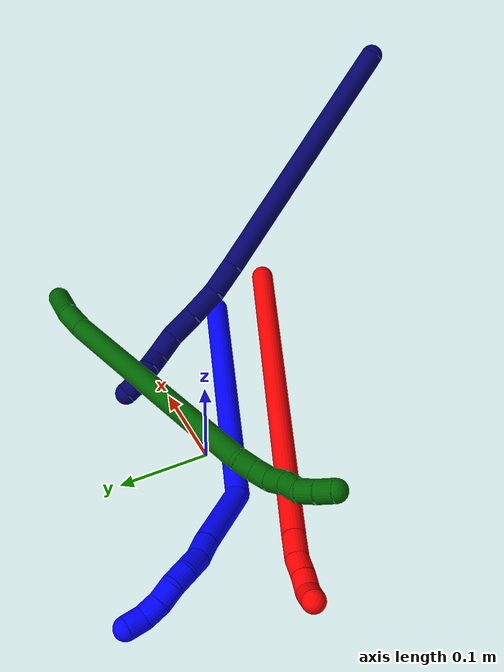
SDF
<sdf version="1.7">
 <world name="default">
  <model name="1">
   <static>0</static>
   <link name="1">
    <collision name="collision-cylinder-e_1_1_4">
     <pose>-0.081287 0.023662 0.118395 -0.197259 -0.592554 0.060393</pose>
     <geometry><cylinder><radius>0.0125</radius><length>0.2911</length></cylinder></geometry>
     <surface>
      <friction><ode><mu>1.16</mu><mu2>1.16</mu2><slip1>0</slip1><slip2>0</slip2></ode></friction>
      <contact><ode><kp>1e+06</kp><kd>1</kd><max_vel>0</max_vel><min_depth>0.001</min_depth></ode></contact>
     </surface>
    </collision>
    <visual name="visual-cylinder-e_1_1_4">
     <pose>-0.081287 0.023662 0.118395 -0.197259 -0.592554 0.060393</pose>
     <geometry><cylinder><radius>0.0125</radius><length>0.2911</length></cylinder></geometry>
     <material><ambient>0 0 1 1</ambient></material>
    </visual>
    <collision name="collision-cylinder-e_2_4_5">
     <pose>-0.166348 0.049323 0.276377 -0.050457 -0.094944 0.002398</pose>
     <geometry><cylinder><radius>0.0125</radius><length>0.079635</length></cylinder></geometry>
     <surface>
      <friction><ode><mu>1.16</mu><mu2>1.16</mu2><slip1>0</slip1><slip2>0</slip2></ode></friction>
      <contact><ode><kp>1e+06</kp><kd>1</kd><max_vel>0</max_vel><min_depth>0.001</min_depth></ode></contact>
     </surface>
    </collision>
    <visual name="visual-cylinder-e_2_4_5">
     <pose>-0.166348 0.049323 0.276377 -0.050457 -0.094944 0.002398</pose>
     <geometry><cylinder><radius>0.0125</radius><length>0.079635</length></cylinder></geometry>
     <material><ambient>0 0 1 1</ambient></material>
    </visual>
    <collision name="collision-cylinder-e_3_5_6">
     <pose>-0.172242 0.052486 0.327686 -0.098972 -0.177994 0.008839</pose>
     <geometry><cylinder><radius>0.0125</radius><length>0.023937</length></cylinder></geometry>
     <surface>
      <friction><ode><mu>1.16</mu><mu2>1.16</mu2><slip1>0</slip1><slip2>0</slip2></ode></friction>
      <contact><ode><kp>1e+06</kp><kd>1</kd><max_vel>0</max_vel><min_depth>0.001</min_depth></ode></contact>
     </surface>
    </collision>
    <visual name="visual-cylinder-e_3_5_6">
     <pose>-0.172242 0.052486 0.327686 -0.098972 -0.177994 0.008839</pose>
     <geometry><cylinder><radius>0.0125</radius><length>0.023937</length></cylinder></geometry>
     <material><ambient>0 0 1 1</ambient></material>
    </visual>
    <collision name="collision-cylinder-e_4_6_7">
     <pose>-0.174438 0.052934 0.351814 0.057678 -0.006146 -0.000177</pose>
     <geometry><cylinder><radius>0.0125</radius><length>0.024854</length></cylinder></geometry>
     <surface>
      <friction><ode><mu>1.16</mu><mu2>1.16</mu2><slip1>0</slip1><slip2>0</slip2></ode></friction>
      <contact><ode><kp>1e+06</kp><kd>1</kd><max_vel>0</max_vel><min_depth>0.001</min_depth></ode></contact>
     </surface>
    </collision>
    <visual name="visual-cylinder-e_4_6_7">
     <pose>-0.174438 0.052934 0.351814 0.057678 -0.006146 -0.000177</pose>
     <geometry><cylinder><radius>0.0125</radius><length>0.024854</length></cylinder></geometry>
     <material><ambient>0 0 1 1</ambient></material>
    </visual>
    <collision name="collision-cylinder-e_5_7_8">
     <pose>-0.173338 0.054342 0.37413 -0.211207 0.115551 -0.012262</pose>
     <geometry><cylinder><radius>0.0125</radius><length>0.020406</length></cylinder></geometry>
     <surface>
      <friction><ode><mu>1.16</mu><mu2>1.16</mu2><slip1>0</slip1><slip2>0</slip2></ode></friction>
      <contact><ode><kp>1e+06</kp><kd>1</kd><max_vel>0</max_vel><min_depth>0.001</min_depth></ode></contact>
     </surface>
    </collision>
    <visual name="visual-cylinder-e_5_7_8">
     <pose>-0.173338 0.054342 0.37413 -0.211207 0.115551 -0.012262</pose>
     <geometry><cylinder><radius>0.0125</radius><length>0.020406</length></cylinder></geometry>
     <material><ambient>0 0 1 1</ambient></material>
    </visual>
    <collision name="collision-cylinder-e_6_8_9">
     <pose>-0.170708 0.061879 0.392339 -0.577906 0.145696 -0.043382</pose>
     <geometry><cylinder><radius>0.0125</radius><length>0.020028</length></cylinder></geometry>
     <surface>
      <friction><ode><mu>1.16</mu><mu2>1.16</mu2><slip1>0</slip1><slip2>0</slip2></ode></friction>
      <contact><ode><kp>1e+06</kp><kd>1</kd><max_vel>0</max_vel><min_depth>0.001</min_depth></ode></contact>
     </surface>
    </collision>
    <visual name="visual-cylinder-e_6_8_9">
     <pose>-0.170708 0.061879 0.392339 -0.577906 0.145696 -0.043382</pose>
     <geometry><cylinder><radius>0.0125</radius><length>0.020028</length></cylinder></geometry>
     <material><ambient>0 0 1 1</ambient></material>
    </visual>
    <collision name="collision-cylinder-e_7_9_10">
     <pose>-0.165894 0.072308 0.408626 -0.560675 0.342161 -0.099406</pose>
     <geometry><cylinder><radius>0.0125</radius><length>0.020027</length></cylinder></geometry>
     <surface>
      <friction><ode><mu>1.16</mu><mu2>1.16</mu2><slip1>0</slip1><slip2>0</slip2></ode></friction>
      <contact><ode><kp>1e+06</kp><kd>1</kd><max_vel>0</max_vel><min_depth>0.001</min_depth></ode></contact>
     </surface>
    </collision>
    <visual name="visual-cylinder-e_7_9_10">
     <pose>-0.165894 0.072308 0.408626 -0.560675 0.342161 -0.099406</pose>
     <geometry><cylinder><radius>0.0125</radius><length>0.020027</length></cylinder></geometry>
     <material><ambient>0 0 1 1</ambient></material>
    </visual>
    <collision name="collision-cylinder-e_8_10_2">
     <pose>-0.158071 0.080128 0.425121 -0.318447 0.462318 -0.075556</pose>
     <geometry><cylinder><radius>0.0125</radius><length>0.020014</length></cylinder></geometry>
     <surface>
      <friction><ode><mu>1.16</mu><mu2>1.16</mu2><slip1>0</slip1><slip2>0</slip2></ode></friction>
      <contact><ode><kp>1e+06</kp><kd>1</kd><max_vel>0</max_vel><min_depth>0.001</min_depth></ode></contact>
     </surface>
    </collision>
    <visual name="visual-cylinder-e_8_10_2">
     <pose>-0.158071 0.080128 0.425121 -0.318447 0.462318 -0.075556</pose>
     <geometry><cylinder><radius>0.0125</radius><length>0.020014</length></cylinder></geometry>
     <material><ambient>0 0 1 1</ambient></material>
    </visual>
    <collision name="collision-sphere-2">
     <pose>-0.153608 0.082932 0.433627 0 -0 0</pose>
     <geometry><sphere><radius>0.0125</radius></sphere></geometry>
     <surface>
      <friction><ode><mu>1.16</mu><mu2>1.16</mu2><slip1>0</slip1><slip2>0</slip2></ode></friction>
      <contact><ode><kp>1e+06</kp><kd>1</kd><max_vel>0</max_vel><min_depth>0.001</min_depth></ode></contact>
     </surface>
    </collision>
    <visual name="visual-sphere-2">
     <pose>-0.153608 0.082932 0.433627 0 -0 0</pose>
     <geometry><sphere><radius>0.0125</radius></sphere></geometry>
     <material><ambient>0 0 1 1</ambient></material>
    </visual>
    <collision name="collision-sphere-10">
     <pose>-0.162534 0.077324 0.416615 0 -0 0</pose>
     <geometry><sphere><radius>0.0125</radius></sphere></geometry>
     <surface>
      <friction><ode><mu>1.16</mu><mu2>1.16</mu2><slip1>0</slip1><slip2>0</slip2></ode></friction>
      <contact><ode><kp>1e+06</kp><kd>1</kd><max_vel>0</max_vel><min_depth>0.001</min_depth></ode></contact>
     </surface>
    </collision>
    <visual name="visual-sphere-10">
     <pose>-0.162534 0.077324 0.416615 0 -0 0</pose>
     <geometry><sphere><radius>0.0125</radius></sphere></geometry>
     <material><ambient>0 0 1 1</ambient></material>
    </visual>
    <collision name="collision-sphere-9">
     <pose>-0.169254 0.067292 0.400638 0 -0 0</pose>
     <geometry><sphere><radius>0.0125</radius></sphere></geometry>
     <surface>
      <friction><ode><mu>1.16</mu><mu2>1.16</mu2><slip1>0</slip1><slip2>0</slip2></ode></friction>
      <contact><ode><kp>1e+06</kp><kd>1</kd><max_vel>0</max_vel><min_depth>0.001</min_depth></ode></contact>
     </surface>
    </collision>
    <visual name="visual-sphere-9">
     <pose>-0.169254 0.067292 0.400638 0 -0 0</pose>
     <geometry><sphere><radius>0.0125</radius></sphere></geometry>
     <material><ambient>0 0 1 1</ambient></material>
    </visual>
    <collision name="collision-sphere-4">
     <pose>-0.162574 0.047324 0.236789 0 -0 0</pose>
     <geometry><sphere><radius>0.0125</radius></sphere></geometry>
     <surface>
      <friction><ode><mu>1.16</mu><mu2>1.16</mu2><slip1>0</slip1><slip2>0</slip2></ode></friction>
      <contact><ode><kp>1e+06</kp><kd>1</kd><max_vel>0</max_vel><min_depth>0.001</min_depth></ode></contact>
     </surface>
    </collision>
    <visual name="visual-sphere-4">
     <pose>-0.162574 0.047324 0.236789 0 -0 0</pose>
     <geometry><sphere><radius>0.0125</radius></sphere></geometry>
     <material><ambient>0 0 1 1</ambient></material>
    </visual>
    <collision name="collision-sphere-1">
     <geometry><sphere><radius>0.0125</radius></sphere></geometry>
     <surface>
      <friction><ode><mu>1.16</mu><mu2>1.16</mu2><slip1>0</slip1><slip2>0</slip2></ode></friction>
      <contact><ode><kp>1e+06</kp><kd>1</kd><max_vel>0</max_vel><min_depth>0.001</min_depth></ode></contact>
     </surface>
    </collision>
    <visual name="visual-sphere-1">
     <geometry><sphere><radius>0.0125</radius></sphere></geometry>
     <material><ambient>0 0 1 1</ambient></material>
    </visual>
    <collision name="collision-sphere-8">
     <pose>-0.172161 0.056467 0.38404 0 -0 0</pose>
     <geometry><sphere><radius>0.0125</radius></sphere></geometry>
     <surface>
      <friction><ode><mu>1.16</mu><mu2>1.16</mu2><slip1>0</slip1><slip2>0</slip2></ode></friction>
      <contact><ode><kp>1e+06</kp><kd>1</kd><max_vel>0</max_vel><min_depth>0.001</min_depth></ode></contact>
     </surface>
    </collision>
    <visual name="visual-sphere-8">
     <pose>-0.172161 0.056467 0.38404 0 -0 0</pose>
     <geometry><sphere><radius>0.0125</radius></sphere></geometry>
     <material><ambient>0 0 1 1</ambient></material>
    </visual>
    <collision name="collision-sphere-5">
     <pose>-0.170123 0.051322 0.315965 0 -0 0</pose>
     <geometry><sphere><radius>0.0125</radius></sphere></geometry>
     <surface>
      <friction><ode><mu>1.16</mu><mu2>1.16</mu2><slip1>0</slip1><slip2>0</slip2></ode></friction>
      <contact><ode><kp>1e+06</kp><kd>1</kd><max_vel>0</max_vel><min_depth>0.001</min_depth></ode></contact>
     </surface>
    </collision>
    <visual name="visual-sphere-5">
     <pose>-0.170123 0.051322 0.315965 0 -0 0</pose>
     <geometry><sphere><radius>0.0125</radius></sphere></geometry>
     <material><ambient>0 0 1 1</ambient></material>
    </visual>
    <collision name="collision-sphere-6">
     <pose>-0.174361 0.05365 0.339408 0 -0 0</pose>
     <geometry><sphere><radius>0.0125</radius></sphere></geometry>
     <surface>
      <friction><ode><mu>1.16</mu><mu2>1.16</mu2><slip1>0</slip1><slip2>0</slip2></ode></friction>
      <contact><ode><kp>1e+06</kp><kd>1</kd><max_vel>0</max_vel><min_depth>0.001</min_depth></ode></contact>
     </surface>
    </collision>
    <visual name="visual-sphere-6">
     <pose>-0.174361 0.05365 0.339408 0 -0 0</pose>
     <geometry><sphere><radius>0.0125</radius></sphere></geometry>
     <material><ambient>0 0 1 1</ambient></material>
    </visual>
    <collision name="collision-sphere-7">
     <pose>-0.174514 0.052218 0.36422 0 -0 0</pose>
     <geometry><sphere><radius>0.0125</radius></sphere></geometry>
     <surface>
      <friction><ode><mu>1.16</mu><mu2>1.16</mu2><slip1>0</slip1><slip2>0</slip2></ode></friction>
      <contact><ode><kp>1e+06</kp><kd>1</kd><max_vel>0</max_vel><min_depth>0.001</min_depth></ode></contact>
     </surface>
    </collision>
    <visual name="visual-sphere-7">
     <pose>-0.174514 0.052218 0.36422 0 -0 0</pose>
     <geometry><sphere><radius>0.0125</radius></sphere></geometry>
     <material><ambient>0 0 1 1</ambient></material>
    </visual>
    <inertial>
     <pose>-0.11762 0.037576 0.210491 0 -0 0</pose>
     <mass>0.5</mass>
     <inertia>
      <ixx>0.001858</ixx>
      <ixy>0</ixy>
      <ixz>0</ixz>
      <iyy>0.002201</iyy>
      <iyz>0</iyz>
      <izz>0.000851</izz>
     </inertia>
    </inertial>
   </link>
   <pose>0.197904 -0.106471 0.012396 -1.35878 -0.027525 0.609387</pose>
  </model>
  <model name="2">
   <static>0</static>
   <link name="2">
    <collision name="collision-cylinder-e_1_1_4">
     <pose>-0.184795 0.07664 0.041832 -1.07117 -1.1294 0.719219</pose>
     <geometry><cylinder><radius>0.0125</radius><length>0.408769</length></cylinder></geometry>
     <surface>
      <friction><ode><mu>1.16</mu><mu2>1.16</mu2><slip1>0</slip1><slip2>0</slip2></ode></friction>
      <contact><ode><kp>1e+06</kp><kd>1</kd><max_vel>0</max_vel><min_depth>0.001</min_depth></ode></contact>
     </surface>
    </collision>
    <visual name="visual-cylinder-e_1_1_4">
     <pose>-0.184795 0.07664 0.041832 -1.07117 -1.1294 0.719219</pose>
     <geometry><cylinder><radius>0.0125</radius><length>0.408769</length></cylinder></geometry>
     <material><ambient>1 0 0 1</ambient></material>
    </visual>
    <collision name="collision-cylinder-e_2_4_5">
     <pose>-0.382358 0.158346 0.087035 -0.98356 -1.12602 0.652054</pose>
     <geometry><cylinder><radius>0.0125</radius><length>0.028286</length></cylinder></geometry>
     <surface>
      <friction><ode><mu>1.16</mu><mu2>1.16</mu2><slip1>0</slip1><slip2>0</slip2></ode></friction>
      <contact><ode><kp>1e+06</kp><kd>1</kd><max_vel>0</max_vel><min_depth>0.001</min_depth></ode></contact>
     </surface>
    </collision>
    <visual name="visual-cylinder-e_2_4_5">
     <pose>-0.382358 0.158346 0.087035 -0.98356 -1.12602 0.652054</pose>
     <geometry><cylinder><radius>0.0125</radius><length>0.028286</length></cylinder></geometry>
     <material><ambient>1 0 0 1</ambient></material>
    </visual>
    <collision name="collision-cylinder-e_3_5_6">
     <pose>-0.403976 0.168832 0.093913 -0.996542 -0.940668 0.539692</pose>
     <geometry><cylinder><radius>0.0125</radius><length>0.02191</length></cylinder></geometry>
     <surface>
      <friction><ode><mu>1.16</mu><mu2>1.16</mu2><slip1>0</slip1><slip2>0</slip2></ode></friction>
      <contact><ode><kp>1e+06</kp><kd>1</kd><max_vel>0</max_vel><min_depth>0.001</min_depth></ode></contact>
     </surface>
    </collision>
    <visual name="visual-cylinder-e_3_5_6">
     <pose>-0.403976 0.168832 0.093913 -0.996542 -0.940668 0.539692</pose>
     <geometry><cylinder><radius>0.0125</radius><length>0.02191</length></cylinder></geometry>
     <material><ambient>1 0 0 1</ambient></material>
    </visual>
    <collision name="collision-cylinder-e_4_6_7">
     <pose>-0.421755 0.178801 0.100513 -0.973558 -1.01849 0.574684</pose>
     <geometry><cylinder><radius>0.0125</radius><length>0.020974</length></cylinder></geometry>
     <surface>
      <friction><ode><mu>1.16</mu><mu2>1.16</mu2><slip1>0</slip1><slip2>0</slip2></ode></friction>
      <contact><ode><kp>1e+06</kp><kd>1</kd><max_vel>0</max_vel><min_depth>0.001</min_depth></ode></contact>
     </surface>
    </collision>
    <visual name="visual-cylinder-e_4_6_7">
     <pose>-0.421755 0.178801 0.100513 -0.973558 -1.01849 0.574684</pose>
     <geometry><cylinder><radius>0.0125</radius><length>0.020974</length></cylinder></geometry>
     <material><ambient>1 0 0 1</ambient></material>
    </visual>
    <collision name="collision-cylinder-e_5_7_2">
     <pose>-0.436879 0.191234 0.103897 -1.53405 -0.665856 0.643479</pose>
     <geometry><cylinder><radius>0.0125</radius><length>0.020062</length></cylinder></geometry>
     <surface>
      <friction><ode><mu>1.16</mu><mu2>1.16</mu2><slip1>0</slip1><slip2>0</slip2></ode></friction>
      <contact><ode><kp>1e+06</kp><kd>1</kd><max_vel>0</max_vel><min_depth>0.001</min_depth></ode></contact>
     </surface>
    </collision>
    <visual name="visual-cylinder-e_5_7_2">
     <pose>-0.436879 0.191234 0.103897 -1.53405 -0.665856 0.643479</pose>
     <geometry><cylinder><radius>0.0125</radius><length>0.020062</length></cylinder></geometry>
     <material><ambient>1 0 0 1</ambient></material>
    </visual>
    <collision name="collision-sphere-2">
     <pose>-0.443075 0.199116 0.104187 0 -0 0</pose>
     <geometry><sphere><radius>0.0125</radius></sphere></geometry>
     <surface>
      <friction><ode><mu>1.16</mu><mu2>1.16</mu2><slip1>0</slip1><slip2>0</slip2></ode></friction>
      <contact><ode><kp>1e+06</kp><kd>1</kd><max_vel>0</max_vel><min_depth>0.001</min_depth></ode></contact>
     </surface>
    </collision>
    <visual name="visual-sphere-2">
     <pose>-0.443075 0.199116 0.104187 0 -0 0</pose>
     <geometry><sphere><radius>0.0125</radius></sphere></geometry>
     <material><ambient>1 0 0 1</ambient></material>
    </visual>
    <collision name="collision-sphere-7">
     <pose>-0.430682 0.183351 0.103607 0 -0 0</pose>
     <geometry><sphere><radius>0.0125</radius></sphere></geometry>
     <surface>
      <friction><ode><mu>1.16</mu><mu2>1.16</mu2><slip1>0</slip1><slip2>0</slip2></ode></friction>
      <contact><ode><kp>1e+06</kp><kd>1</kd><max_vel>0</max_vel><min_depth>0.001</min_depth></ode></contact>
     </surface>
    </collision>
    <visual name="visual-sphere-7">
     <pose>-0.430682 0.183351 0.103607 0 -0 0</pose>
     <geometry><sphere><radius>0.0125</radius></sphere></geometry>
     <material><ambient>1 0 0 1</ambient></material>
    </visual>
    <collision name="collision-sphere-6">
     <pose>-0.412827 0.174252 0.097419 0 -0 0</pose>
     <geometry><sphere><radius>0.0125</radius></sphere></geometry>
     <surface>
      <friction><ode><mu>1.16</mu><mu2>1.16</mu2><slip1>0</slip1><slip2>0</slip2></ode></friction>
      <contact><ode><kp>1e+06</kp><kd>1</kd><max_vel>0</max_vel><min_depth>0.001</min_depth></ode></contact>
     </surface>
    </collision>
    <visual name="visual-sphere-6">
     <pose>-0.412827 0.174252 0.097419 0 -0 0</pose>
     <geometry><sphere><radius>0.0125</radius></sphere></geometry>
     <material><ambient>1 0 0 1</ambient></material>
    </visual>
    <collision name="collision-sphere-5">
     <pose>-0.395125 0.163412 0.090406 0 -0 0</pose>
     <geometry><sphere><radius>0.0125</radius></sphere></geometry>
     <surface>
      <friction><ode><mu>1.16</mu><mu2>1.16</mu2><slip1>0</slip1><slip2>0</slip2></ode></friction>
      <contact><ode><kp>1e+06</kp><kd>1</kd><max_vel>0</max_vel><min_depth>0.001</min_depth></ode></contact>
     </surface>
    </collision>
    <visual name="visual-sphere-5">
     <pose>-0.395125 0.163412 0.090406 0 -0 0</pose>
     <geometry><sphere><radius>0.0125</radius></sphere></geometry>
     <material><ambient>1 0 0 1</ambient></material>
    </visual>
    <collision name="collision-sphere-1">
     <geometry><sphere><radius>0.0125</radius></sphere></geometry>
     <surface>
      <friction><ode><mu>1.16</mu><mu2>1.16</mu2><slip1>0</slip1><slip2>0</slip2></ode></friction>
      <contact><ode><kp>1e+06</kp><kd>1</kd><max_vel>0</max_vel><min_depth>0.001</min_depth></ode></contact>
     </surface>
    </collision>
    <visual name="visual-sphere-1">
     <geometry><sphere><radius>0.0125</radius></sphere></geometry>
     <material><ambient>1 0 0 1</ambient></material>
    </visual>
    <collision name="collision-sphere-4">
     <pose>-0.369591 0.153281 0.083663 0 -0 0</pose>
     <geometry><sphere><radius>0.0125</radius></sphere></geometry>
     <surface>
      <friction><ode><mu>1.16</mu><mu2>1.16</mu2><slip1>0</slip1><slip2>0</slip2></ode></friction>
      <contact><ode><kp>1e+06</kp><kd>1</kd><max_vel>0</max_vel><min_depth>0.001</min_depth></ode></contact>
     </surface>
    </collision>
    <visual name="visual-sphere-4">
     <pose>-0.369591 0.153281 0.083663 0 -0 0</pose>
     <geometry><sphere><radius>0.0125</radius></sphere></geometry>
     <material><ambient>1 0 0 1</ambient></material>
    </visual>
    <inertial>
     <pose>-0.225631 0.094186 0.051623 0 -0 0</pose>
     <mass>0.5</mass>
     <inertia>
      <ixx>0.003412</ixx>
      <ixy>0</ixy>
      <ixz>0</ixz>
      <iyy>0.006672</iyy>
      <iyz>0</iyz>
      <izz>0.003031</izz>
     </inertia>
    </inertial>
   </link>
   <pose>0.2292 -0.183602 0.011498 2.18178 -0.202121 -0.783777</pose>
  </model>
  <model name="6">
   <static>0</static>
   <link name="6">
    <collision name="collision-cylinder-e_1_1_4">
     <pose>-0.007956 -0.006962 -0.022029 2.83551 -0.331653 -1.65232</pose>
     <geometry><cylinder><radius>0.0125</radius><length>0.048869</length></cylinder></geometry>
     <surface>
      <friction><ode><mu>1.16</mu><mu2>1.16</mu2><slip1>0</slip1><slip2>0</slip2></ode></friction>
      <contact><ode><kp>1e+06</kp><kd>1</kd><max_vel>0</max_vel><min_depth>0.001</min_depth></ode></contact>
     </surface>
    </collision>
    <visual name="visual-cylinder-e_1_1_4">
     <pose>-0.007956 -0.006962 -0.022029 2.83551 -0.331653 -1.65232</pose>
     <geometry><cylinder><radius>0.0125</radius><length>0.048869</length></cylinder></geometry>
     <material><ambient>0 0.392157 0.003922 1</ambient></material>
    </visual>
    <collision name="collision-cylinder-e_2_4_5">
     <pose>-0.025505 -0.020257 -0.053821 2.56609 -0.689411 -1.7628</pose>
     <geometry><cylinder><radius>0.0125</radius><length>0.030163</length></cylinder></geometry>
     <surface>
      <friction><ode><mu>1.16</mu><mu2>1.16</mu2><slip1>0</slip1><slip2>0</slip2></ode></friction>
      <contact><ode><kp>1e+06</kp><kd>1</kd><max_vel>0</max_vel><min_depth>0.001</min_depth></ode></contact>
     </surface>
    </collision>
    <visual name="visual-cylinder-e_2_4_5">
     <pose>-0.025505 -0.020257 -0.053821 2.56609 -0.689411 -1.7628</pose>
     <geometry><cylinder><radius>0.0125</radius><length>0.030163</length></cylinder></geometry>
     <material><ambient>0 0.392157 0.003922 1</ambient></material>
    </visual>
    <collision name="collision-cylinder-e_3_5_6">
     <pose>-0.12699 -0.069117 -0.173027 2.77097 -0.664054 -2.14562</pose>
     <geometry><cylinder><radius>0.0125</radius><length>0.298196</length></cylinder></geometry>
     <surface>
      <friction><ode><mu>1.16</mu><mu2>1.16</mu2><slip1>0</slip1><slip2>0</slip2></ode></friction>
      <contact><ode><kp>1e+06</kp><kd>1</kd><max_vel>0</max_vel><min_depth>0.001</min_depth></ode></contact>
     </surface>
    </collision>
    <visual name="visual-cylinder-e_3_5_6">
     <pose>-0.12699 -0.069117 -0.173027 2.77097 -0.664054 -2.14562</pose>
     <geometry><cylinder><radius>0.0125</radius><length>0.298196</length></cylinder></geometry>
     <material><ambient>0 0.392157 0.003922 1</ambient></material>
    </visual>
    <collision name="collision-cylinder-e_4_6_7">
     <pose>-0.227756 -0.115028 -0.286768 2.47472 -1.01844 -2.03109</pose>
     <geometry><cylinder><radius>0.0125</radius><length>0.020851</length></cylinder></geometry>
     <surface>
      <friction><ode><mu>1.16</mu><mu2>1.16</mu2><slip1>0</slip1><slip2>0</slip2></ode></friction>
      <contact><ode><kp>1e+06</kp><kd>1</kd><max_vel>0</max_vel><min_depth>0.001</min_depth></ode></contact>
     </surface>
    </collision>
    <visual name="visual-cylinder-e_4_6_7">
     <pose>-0.227756 -0.115028 -0.286768 2.47472 -1.01844 -2.03109</pose>
     <geometry><cylinder><radius>0.0125</radius><length>0.020851</length></cylinder></geometry>
     <material><ambient>0 0.392157 0.003922 1</ambient></material>
    </visual>
    <collision name="collision-cylinder-e_5_7_8">
     <pose>-0.244044 -0.120319 -0.298674 2.89588 -0.757128 -2.53958</pose>
     <geometry><cylinder><radius>0.0125</radius><length>0.021584</length></cylinder></geometry>
     <surface>
      <friction><ode><mu>1.16</mu><mu2>1.16</mu2><slip1>0</slip1><slip2>0</slip2></ode></friction>
      <contact><ode><kp>1e+06</kp><kd>1</kd><max_vel>0</max_vel><min_depth>0.001</min_depth></ode></contact>
     </surface>
    </collision>
    <visual name="visual-cylinder-e_5_7_8">
     <pose>-0.244044 -0.120319 -0.298674 2.89588 -0.757128 -2.53958</pose>
     <geometry><cylinder><radius>0.0125</radius><length>0.021584</length></cylinder></geometry>
     <material><ambient>0 0.392157 0.003922 1</ambient></material>
    </visual>
    <collision name="collision-cylinder-e_6_8_9">
     <pose>-0.258343 -0.121336 -0.313609 -3.02051 -0.750737 2.83634</pose>
     <geometry><cylinder><radius>0.0125</radius><length>0.020188</length></cylinder></geometry>
     <surface>
      <friction><ode><mu>1.16</mu><mu2>1.16</mu2><slip1>0</slip1><slip2>0</slip2></ode></friction>
      <contact><ode><kp>1e+06</kp><kd>1</kd><max_vel>0</max_vel><min_depth>0.001</min_depth></ode></contact>
     </surface>
    </collision>
    <visual name="visual-cylinder-e_6_8_9">
     <pose>-0.258343 -0.121336 -0.313609 -3.02051 -0.750737 2.83634</pose>
     <geometry><cylinder><radius>0.0125</radius><length>0.020188</length></cylinder></geometry>
     <material><ambient>0 0.392157 0.003922 1</ambient></material>
    </visual>
    <collision name="collision-cylinder-e_7_9_10">
     <pose>-0.270669 -0.121885 -0.329235 2.96975 -0.573501 -2.5732</pose>
     <geometry><cylinder><radius>0.0125</radius><length>0.020055</length></cylinder></geometry>
     <surface>
      <friction><ode><mu>1.16</mu><mu2>1.16</mu2><slip1>0</slip1><slip2>0</slip2></ode></friction>
      <contact><ode><kp>1e+06</kp><kd>1</kd><max_vel>0</max_vel><min_depth>0.001</min_depth></ode></contact>
     </surface>
    </collision>
    <visual name="visual-cylinder-e_7_9_10">
     <pose>-0.270669 -0.121885 -0.329235 2.96975 -0.573501 -2.5732</pose>
     <geometry><cylinder><radius>0.0125</radius><length>0.020055</length></cylinder></geometry>
     <material><ambient>0 0.392157 0.003922 1</ambient></material>
    </visual>
    <collision name="collision-cylinder-e_8_10_11">
     <pose>-0.28403 -0.12126 -0.343321 -2.79888 -0.910987 2.4624</pose>
     <geometry><cylinder><radius>0.0125</radius><length>0.020048</length></cylinder></geometry>
     <surface>
      <friction><ode><mu>1.16</mu><mu2>1.16</mu2><slip1>0</slip1><slip2>0</slip2></ode></friction>
      <contact><ode><kp>1e+06</kp><kd>1</kd><max_vel>0</max_vel><min_depth>0.001</min_depth></ode></contact>
     </surface>
    </collision>
    <visual name="visual-cylinder-e_8_10_11">
     <pose>-0.28403 -0.12126 -0.343321 -2.79888 -0.910987 2.4624</pose>
     <geometry><cylinder><radius>0.0125</radius><length>0.020048</length></cylinder></geometry>
     <material><ambient>0 0.392157 0.003922 1</ambient></material>
    </visual>
    <collision name="collision-cylinder-e_9_11_2">
     <pose>-0.299956 -0.116271 -0.354381 -2.63515 -0.925283 2.18435</pose>
     <geometry><cylinder><radius>0.0125</radius><length>0.020045</length></cylinder></geometry>
     <surface>
      <friction><ode><mu>1.16</mu><mu2>1.16</mu2><slip1>0</slip1><slip2>0</slip2></ode></friction>
      <contact><ode><kp>1e+06</kp><kd>1</kd><max_vel>0</max_vel><min_depth>0.001</min_depth></ode></contact>
     </surface>
    </collision>
    <visual name="visual-cylinder-e_9_11_2">
     <pose>-0.299956 -0.116271 -0.354381 -2.63515 -0.925283 2.18435</pose>
     <geometry><cylinder><radius>0.0125</radius><length>0.020045</length></cylinder></geometry>
     <material><ambient>0 0.392157 0.003922 1</ambient></material>
    </visual>
    <collision name="collision-sphere-2">
     <pose>-0.307961 -0.113346 -0.359653 0 -0 0</pose>
     <geometry><sphere><radius>0.0125</radius></sphere></geometry>
     <surface>
      <friction><ode><mu>1.16</mu><mu2>1.16</mu2><slip1>0</slip1><slip2>0</slip2></ode></friction>
      <contact><ode><kp>1e+06</kp><kd>1</kd><max_vel>0</max_vel><min_depth>0.001</min_depth></ode></contact>
     </surface>
    </collision>
    <visual name="visual-sphere-2">
     <pose>-0.307961 -0.113346 -0.359653 0 -0 0</pose>
     <geometry><sphere><radius>0.0125</radius></sphere></geometry>
     <material><ambient>0 0.392157 0.003922 1</ambient></material>
    </visual>
    <collision name="collision-sphere-11">
     <pose>-0.29195 -0.119195 -0.349108 0 -0 0</pose>
     <geometry><sphere><radius>0.0125</radius></sphere></geometry>
     <surface>
      <friction><ode><mu>1.16</mu><mu2>1.16</mu2><slip1>0</slip1><slip2>0</slip2></ode></friction>
      <contact><ode><kp>1e+06</kp><kd>1</kd><max_vel>0</max_vel><min_depth>0.001</min_depth></ode></contact>
     </surface>
    </collision>
    <visual name="visual-sphere-11">
     <pose>-0.29195 -0.119195 -0.349108 0 -0 0</pose>
     <geometry><sphere><radius>0.0125</radius></sphere></geometry>
     <material><ambient>0 0.392157 0.003922 1</ambient></material>
    </visual>
    <collision name="collision-sphere-10">
     <pose>-0.27611 -0.123325 -0.337534 0 -0 0</pose>
     <geometry><sphere><radius>0.0125</radius></sphere></geometry>
     <surface>
      <friction><ode><mu>1.16</mu><mu2>1.16</mu2><slip1>0</slip1><slip2>0</slip2></ode></friction>
      <contact><ode><kp>1e+06</kp><kd>1</kd><max_vel>0</max_vel><min_depth>0.001</min_depth></ode></contact>
     </surface>
    </collision>
    <visual name="visual-sphere-10">
     <pose>-0.27611 -0.123325 -0.337534 0 -0 0</pose>
     <geometry><sphere><radius>0.0125</radius></sphere></geometry>
     <material><ambient>0 0.392157 0.003922 1</ambient></material>
    </visual>
    <collision name="collision-sphere-9">
     <pose>-0.265229 -0.120444 -0.320936 0 -0 0</pose>
     <geometry><sphere><radius>0.0125</radius></sphere></geometry>
     <surface>
      <friction><ode><mu>1.16</mu><mu2>1.16</mu2><slip1>0</slip1><slip2>0</slip2></ode></friction>
      <contact><ode><kp>1e+06</kp><kd>1</kd><max_vel>0</max_vel><min_depth>0.001</min_depth></ode></contact>
     </surface>
    </collision>
    <visual name="visual-sphere-9">
     <pose>-0.265229 -0.120444 -0.320936 0 -0 0</pose>
     <geometry><sphere><radius>0.0125</radius></sphere></geometry>
     <material><ambient>0 0.392157 0.003922 1</ambient></material>
    </visual>
    <collision name="collision-sphere-4">
     <pose>-0.015912 -0.013923 -0.044058 0 -0 0</pose>
     <geometry><sphere><radius>0.0125</radius></sphere></geometry>
     <surface>
      <friction><ode><mu>1.16</mu><mu2>1.16</mu2><slip1>0</slip1><slip2>0</slip2></ode></friction>
      <contact><ode><kp>1e+06</kp><kd>1</kd><max_vel>0</max_vel><min_depth>0.001</min_depth></ode></contact>
     </surface>
    </collision>
    <visual name="visual-sphere-4">
     <pose>-0.015912 -0.013923 -0.044058 0 -0 0</pose>
     <geometry><sphere><radius>0.0125</radius></sphere></geometry>
     <material><ambient>0 0.392157 0.003922 1</ambient></material>
    </visual>
    <collision name="collision-sphere-1">
     <geometry><sphere><radius>0.0125</radius></sphere></geometry>
     <surface>
      <friction><ode><mu>1.16</mu><mu2>1.16</mu2><slip1>0</slip1><slip2>0</slip2></ode></friction>
      <contact><ode><kp>1e+06</kp><kd>1</kd><max_vel>0</max_vel><min_depth>0.001</min_depth></ode></contact>
     </surface>
    </collision>
    <visual name="visual-sphere-1">
     <geometry><sphere><radius>0.0125</radius></sphere></geometry>
     <material><ambient>0 0.392157 0.003922 1</ambient></material>
    </visual>
    <collision name="collision-sphere-8">
     <pose>-0.251457 -0.122227 -0.306283 0 -0 0</pose>
     <geometry><sphere><radius>0.0125</radius></sphere></geometry>
     <surface>
      <friction><ode><mu>1.16</mu><mu2>1.16</mu2><slip1>0</slip1><slip2>0</slip2></ode></friction>
      <contact><ode><kp>1e+06</kp><kd>1</kd><max_vel>0</max_vel><min_depth>0.001</min_depth></ode></contact>
     </surface>
    </collision>
    <visual name="visual-sphere-8">
     <pose>-0.251457 -0.122227 -0.306283 0 -0 0</pose>
     <geometry><sphere><radius>0.0125</radius></sphere></geometry>
     <material><ambient>0 0.392157 0.003922 1</ambient></material>
    </visual>
    <collision name="collision-sphere-5">
     <pose>-0.035098 -0.02659 -0.063584 0 -0 0</pose>
     <geometry><sphere><radius>0.0125</radius></sphere></geometry>
     <surface>
      <friction><ode><mu>1.16</mu><mu2>1.16</mu2><slip1>0</slip1><slip2>0</slip2></ode></friction>
      <contact><ode><kp>1e+06</kp><kd>1</kd><max_vel>0</max_vel><min_depth>0.001</min_depth></ode></contact>
     </surface>
    </collision>
    <visual name="visual-sphere-5">
     <pose>-0.035098 -0.02659 -0.063584 0 -0 0</pose>
     <geometry><sphere><radius>0.0125</radius></sphere></geometry>
     <material><ambient>0 0.392157 0.003922 1</ambient></material>
    </visual>
    <collision name="collision-sphere-6">
     <pose>-0.218881 -0.111644 -0.282469 0 -0 0</pose>
     <geometry><sphere><radius>0.0125</radius></sphere></geometry>
     <surface>
      <friction><ode><mu>1.16</mu><mu2>1.16</mu2><slip1>0</slip1><slip2>0</slip2></ode></friction>
      <contact><ode><kp>1e+06</kp><kd>1</kd><max_vel>0</max_vel><min_depth>0.001</min_depth></ode></contact>
     </surface>
    </collision>
    <visual name="visual-sphere-6">
     <pose>-0.218881 -0.111644 -0.282469 0 -0 0</pose>
     <geometry><sphere><radius>0.0125</radius></sphere></geometry>
     <material><ambient>0 0.392157 0.003922 1</ambient></material>
    </visual>
    <collision name="collision-sphere-7">
     <pose>-0.236632 -0.118411 -0.291066 0 -0 0</pose>
     <geometry><sphere><radius>0.0125</radius></sphere></geometry>
     <surface>
      <friction><ode><mu>1.16</mu><mu2>1.16</mu2><slip1>0</slip1><slip2>0</slip2></ode></friction>
      <contact><ode><kp>1e+06</kp><kd>1</kd><max_vel>0</max_vel><min_depth>0.001</min_depth></ode></contact>
     </surface>
    </collision>
    <visual name="visual-sphere-7">
     <pose>-0.236632 -0.118411 -0.291066 0 -0 0</pose>
     <geometry><sphere><radius>0.0125</radius></sphere></geometry>
     <material><ambient>0 0.392157 0.003922 1</ambient></material>
    </visual>
    <inertial>
     <pose>-0.142786 -0.072425 -0.187285 0 -0 0</pose>
     <mass>0.5</mass>
     <inertia>
      <ixx>-0.002463</ixx>
      <ixy>0</ixy>
      <ixz>0</ixz>
      <iyy>6.3e-05</iyy>
      <iyz>0</iyz>
      <izz>0.001992</izz>
     </inertia>
    </inertial>
   </link>
   <pose>0.284796 0.060248 0.02546 2.25658 -0.19129 1.05299</pose>
  </model>
  <model name="7">
   <static>0</static>
   <link name="7">
    <collision name="collision-cylinder-e_1_1_4">
     <pose>-0.020594 0.080681 -0.127728 -2.57821 -0.135479 0.460563</pose>
     <geometry><cylinder><radius>0.0125</radius><length>0.304946</length></cylinder></geometry>
     <surface>
      <friction><ode><mu>1.16</mu><mu2>1.16</mu2><slip1>0</slip1><slip2>0</slip2></ode></friction>
      <contact><ode><kp>1e+06</kp><kd>1</kd><max_vel>0</max_vel><min_depth>0.001</min_depth></ode></contact>
     </surface>
    </collision>
    <visual name="visual-cylinder-e_1_1_4">
     <pose>-0.020594 0.080681 -0.127728 -2.57821 -0.135479 0.460563</pose>
     <geometry><cylinder><radius>0.0125</radius><length>0.304946</length></cylinder></geometry>
     <material><ambient>0.003922 0 0.403922 1</ambient></material>
    </visual>
    <collision name="collision-cylinder-e_2_4_5">
     <pose>-0.042528 0.17124 -0.270757 -2.56837 -0.07349 0.248179</pose>
     <geometry><cylinder><radius>0.0125</radius><length>0.036523</length></cylinder></geometry>
     <surface>
      <friction><ode><mu>1.16</mu><mu2>1.16</mu2><slip1>0</slip1><slip2>0</slip2></ode></friction>
      <contact><ode><kp>1e+06</kp><kd>1</kd><max_vel>0</max_vel><min_depth>0.001</min_depth></ode></contact>
     </surface>
    </collision>
    <visual name="visual-cylinder-e_2_4_5">
     <pose>-0.042528 0.17124 -0.270757 -2.56837 -0.07349 0.248179</pose>
     <geometry><cylinder><radius>0.0125</radius><length>0.036523</length></cylinder></geometry>
     <material><ambient>0.003922 0 0.403922 1</ambient></material>
    </visual>
    <collision name="collision-cylinder-e_3_5_6">
     <pose>-0.044622 0.192937 -0.300058 -2.44043 -0.041086 0.112252</pose>
     <geometry><cylinder><radius>0.0125</radius><length>0.036676</length></cylinder></geometry>
     <surface>
      <friction><ode><mu>1.16</mu><mu2>1.16</mu2><slip1>0</slip1><slip2>0</slip2></ode></friction>
      <contact><ode><kp>1e+06</kp><kd>1</kd><max_vel>0</max_vel><min_depth>0.001</min_depth></ode></contact>
     </surface>
    </collision>
    <visual name="visual-cylinder-e_3_5_6">
     <pose>-0.044622 0.192937 -0.300058 -2.44043 -0.041086 0.112252</pose>
     <geometry><cylinder><radius>0.0125</radius><length>0.036676</length></cylinder></geometry>
     <material><ambient>0.003922 0 0.403922 1</ambient></material>
    </visual>
    <collision name="collision-cylinder-e_4_6_7">
     <pose>-0.045301 0.215775 -0.326441 -2.41447 0.004475 -0.011763</pose>
     <geometry><cylinder><radius>0.0125</radius><length>0.033151</length></cylinder></geometry>
     <surface>
      <friction><ode><mu>1.16</mu><mu2>1.16</mu2><slip1>0</slip1><slip2>0</slip2></ode></friction>
      <contact><ode><kp>1e+06</kp><kd>1</kd><max_vel>0</max_vel><min_depth>0.001</min_depth></ode></contact>
     </surface>
    </collision>
    <visual name="visual-cylinder-e_4_6_7">
     <pose>-0.045301 0.215775 -0.326441 -2.41447 0.004475 -0.011763</pose>
     <geometry><cylinder><radius>0.0125</radius><length>0.033151</length></cylinder></geometry>
     <material><ambient>0.003922 0 0.403922 1</ambient></material>
    </visual>
    <collision name="collision-cylinder-e_5_7_8">
     <pose>-0.047446 0.234922 -0.350405 -2.52956 -0.155569 0.483736</pose>
     <geometry><cylinder><radius>0.0125</radius><length>0.028642</length></cylinder></geometry>
     <surface>
      <friction><ode><mu>1.16</mu><mu2>1.16</mu2><slip1>0</slip1><slip2>0</slip2></ode></friction>
      <contact><ode><kp>1e+06</kp><kd>1</kd><max_vel>0</max_vel><min_depth>0.001</min_depth></ode></contact>
     </surface>
    </collision>
    <visual name="visual-cylinder-e_5_7_8">
     <pose>-0.047446 0.234922 -0.350405 -2.52956 -0.155569 0.483736</pose>
     <geometry><cylinder><radius>0.0125</radius><length>0.028642</length></cylinder></geometry>
     <material><ambient>0.003922 0 0.403922 1</ambient></material>
    </visual>
    <collision name="collision-cylinder-e_6_8_9">
     <pose>-0.055113 0.248894 -0.368043 -2.37423 -0.574415 1.26336</pose>
     <geometry><cylinder><radius>0.0125</radius><length>0.020054</length></cylinder></geometry>
     <surface>
      <friction><ode><mu>1.16</mu><mu2>1.16</mu2><slip1>0</slip1><slip2>0</slip2></ode></friction>
      <contact><ode><kp>1e+06</kp><kd>1</kd><max_vel>0</max_vel><min_depth>0.001</min_depth></ode></contact>
     </surface>
    </collision>
    <visual name="visual-cylinder-e_6_8_9">
     <pose>-0.055113 0.248894 -0.368043 -2.37423 -0.574415 1.26336</pose>
     <geometry><cylinder><radius>0.0125</radius><length>0.020054</length></cylinder></geometry>
     <material><ambient>0.003922 0 0.403922 1</ambient></material>
    </visual>
    <collision name="collision-cylinder-e_7_9_10">
     <pose>-0.065666 0.260226 -0.380726 -2.44977 -0.535546 1.30135</pose>
     <geometry><cylinder><radius>0.0125</radius><length>0.020004</length></cylinder></geometry>
     <surface>
      <friction><ode><mu>1.16</mu><mu2>1.16</mu2><slip1>0</slip1><slip2>0</slip2></ode></friction>
      <contact><ode><kp>1e+06</kp><kd>1</kd><max_vel>0</max_vel><min_depth>0.001</min_depth></ode></contact>
     </surface>
    </collision>
    <visual name="visual-cylinder-e_7_9_10">
     <pose>-0.065666 0.260226 -0.380726 -2.44977 -0.535546 1.30135</pose>
     <geometry><cylinder><radius>0.0125</radius><length>0.020004</length></cylinder></geometry>
     <material><ambient>0.003922 0 0.403922 1</ambient></material>
    </visual>
    <collision name="collision-cylinder-e_8_10_2">
     <pose>-0.071106 0.272837 -0.394363 -2.34831 -0.033586 0.080152</pose>
     <geometry><cylinder><radius>0.0125</radius><length>0.020003</length></cylinder></geometry>
     <surface>
      <friction><ode><mu>1.16</mu><mu2>1.16</mu2><slip1>0</slip1><slip2>0</slip2></ode></friction>
      <contact><ode><kp>1e+06</kp><kd>1</kd><max_vel>0</max_vel><min_depth>0.001</min_depth></ode></contact>
     </surface>
    </collision>
    <visual name="visual-cylinder-e_8_10_2">
     <pose>-0.071106 0.272837 -0.394363 -2.34831 -0.033586 0.080152</pose>
     <geometry><cylinder><radius>0.0125</radius><length>0.020003</length></cylinder></geometry>
     <material><ambient>0.003922 0 0.403922 1</ambient></material>
    </visual>
    <collision name="collision-sphere-2">
     <pose>-0.071442 0.279961 -0.401375 0 -0 0</pose>
     <geometry><sphere><radius>0.0125</radius></sphere></geometry>
     <surface>
      <friction><ode><mu>1.16</mu><mu2>1.16</mu2><slip1>0</slip1><slip2>0</slip2></ode></friction>
      <contact><ode><kp>1e+06</kp><kd>1</kd><max_vel>0</max_vel><min_depth>0.001</min_depth></ode></contact>
     </surface>
    </collision>
    <visual name="visual-sphere-2">
     <pose>-0.071442 0.279961 -0.401375 0 -0 0</pose>
     <geometry><sphere><radius>0.0125</radius></sphere></geometry>
     <material><ambient>0.003922 0 0.403922 1</ambient></material>
    </visual>
    <collision name="collision-sphere-10">
     <pose>-0.07077 0.265713 -0.38735 0 -0 0</pose>
     <geometry><sphere><radius>0.0125</radius></sphere></geometry>
     <surface>
      <friction><ode><mu>1.16</mu><mu2>1.16</mu2><slip1>0</slip1><slip2>0</slip2></ode></friction>
      <contact><ode><kp>1e+06</kp><kd>1</kd><max_vel>0</max_vel><min_depth>0.001</min_depth></ode></contact>
     </surface>
    </collision>
    <visual name="visual-sphere-10">
     <pose>-0.07077 0.265713 -0.38735 0 -0 0</pose>
     <geometry><sphere><radius>0.0125</radius></sphere></geometry>
     <material><ambient>0.003922 0 0.403922 1</ambient></material>
    </visual>
    <collision name="collision-sphere-9">
     <pose>-0.060561 0.254738 -0.374102 0 -0 0</pose>
     <geometry><sphere><radius>0.0125</radius></sphere></geometry>
     <surface>
      <friction><ode><mu>1.16</mu><mu2>1.16</mu2><slip1>0</slip1><slip2>0</slip2></ode></friction>
      <contact><ode><kp>1e+06</kp><kd>1</kd><max_vel>0</max_vel><min_depth>0.001</min_depth></ode></contact>
     </surface>
    </collision>
    <visual name="visual-sphere-9">
     <pose>-0.060561 0.254738 -0.374102 0 -0 0</pose>
     <geometry><sphere><radius>0.0125</radius></sphere></geometry>
     <material><ambient>0.003922 0 0.403922 1</ambient></material>
    </visual>
    <collision name="collision-sphere-4">
     <pose>-0.041188 0.161363 -0.255456 0 -0 0</pose>
     <geometry><sphere><radius>0.0125</radius></sphere></geometry>
     <surface>
      <friction><ode><mu>1.16</mu><mu2>1.16</mu2><slip1>0</slip1><slip2>0</slip2></ode></friction>
      <contact><ode><kp>1e+06</kp><kd>1</kd><max_vel>0</max_vel><min_depth>0.001</min_depth></ode></contact>
     </surface>
    </collision>
    <visual name="visual-sphere-4">
     <pose>-0.041188 0.161363 -0.255456 0 -0 0</pose>
     <geometry><sphere><radius>0.0125</radius></sphere></geometry>
     <material><ambient>0.003922 0 0.403922 1</ambient></material>
    </visual>
    <collision name="collision-sphere-1">
     <geometry><sphere><radius>0.0125</radius></sphere></geometry>
     <surface>
      <friction><ode><mu>1.16</mu><mu2>1.16</mu2><slip1>0</slip1><slip2>0</slip2></ode></friction>
      <contact><ode><kp>1e+06</kp><kd>1</kd><max_vel>0</max_vel><min_depth>0.001</min_depth></ode></contact>
     </surface>
    </collision>
    <visual name="visual-sphere-1">
     <geometry><sphere><radius>0.0125</radius></sphere></geometry>
     <material><ambient>0.003922 0 0.403922 1</ambient></material>
    </visual>
    <collision name="collision-sphere-8">
     <pose>-0.049665 0.24305 -0.361984 0 -0 0</pose>
     <geometry><sphere><radius>0.0125</radius></sphere></geometry>
     <surface>
      <friction><ode><mu>1.16</mu><mu2>1.16</mu2><slip1>0</slip1><slip2>0</slip2></ode></friction>
      <contact><ode><kp>1e+06</kp><kd>1</kd><max_vel>0</max_vel><min_depth>0.001</min_depth></ode></contact>
     </surface>
    </collision>
    <visual name="visual-sphere-8">
     <pose>-0.049665 0.24305 -0.361984 0 -0 0</pose>
     <geometry><sphere><radius>0.0125</radius></sphere></geometry>
     <material><ambient>0.003922 0 0.403922 1</ambient></material>
    </visual>
    <collision name="collision-sphere-5">
     <pose>-0.043869 0.181118 -0.286058 0 -0 0</pose>
     <geometry><sphere><radius>0.0125</radius></sphere></geometry>
     <surface>
      <friction><ode><mu>1.16</mu><mu2>1.16</mu2><slip1>0</slip1><slip2>0</slip2></ode></friction>
      <contact><ode><kp>1e+06</kp><kd>1</kd><max_vel>0</max_vel><min_depth>0.001</min_depth></ode></contact>
     </surface>
    </collision>
    <visual name="visual-sphere-5">
     <pose>-0.043869 0.181118 -0.286058 0 -0 0</pose>
     <geometry><sphere><radius>0.0125</radius></sphere></geometry>
     <material><ambient>0.003922 0 0.403922 1</ambient></material>
    </visual>
    <collision name="collision-sphere-6">
     <pose>-0.045376 0.204757 -0.314058 0 -0 0</pose>
     <geometry><sphere><radius>0.0125</radius></sphere></geometry>
     <surface>
      <friction><ode><mu>1.16</mu><mu2>1.16</mu2><slip1>0</slip1><slip2>0</slip2></ode></friction>
      <contact><ode><kp>1e+06</kp><kd>1</kd><max_vel>0</max_vel><min_depth>0.001</min_depth></ode></contact>
     </surface>
    </collision>
    <visual name="visual-sphere-6">
     <pose>-0.045376 0.204757 -0.314058 0 -0 0</pose>
     <geometry><sphere><radius>0.0125</radius></sphere></geometry>
     <material><ambient>0.003922 0 0.403922 1</ambient></material>
    </visual>
    <collision name="collision-sphere-7">
     <pose>-0.045227 0.226793 -0.338825 0 -0 0</pose>
     <geometry><sphere><radius>0.0125</radius></sphere></geometry>
     <surface>
      <friction><ode><mu>1.16</mu><mu2>1.16</mu2><slip1>0</slip1><slip2>0</slip2></ode></friction>
      <contact><ode><kp>1e+06</kp><kd>1</kd><max_vel>0</max_vel><min_depth>0.001</min_depth></ode></contact>
     </surface>
    </collision>
    <visual name="visual-sphere-7">
     <pose>-0.045227 0.226793 -0.338825 0 -0 0</pose>
     <geometry><sphere><radius>0.0125</radius></sphere></geometry>
     <material><ambient>0.003922 0 0.403922 1</ambient></material>
    </visual>
    <inertial>
     <pose>-0.032344 0.134941 -0.207175 0 -0 0</pose>
     <mass>0.5</mass>
     <inertia>
      <ixx>0.003174</ixx>
      <ixy>0</ixy>
      <ixz>0</ixz>
      <iyy>-0.000664</iyy>
      <iyz>0</iyz>
      <izz>-0.000979</izz>
     </inertia>
    </inertial>
   </link>
   <pose>0.284597 -0.352816 0.249755 0.23232 0.563862 -0.165089</pose>
  </model>
 </world>
</sdf>
